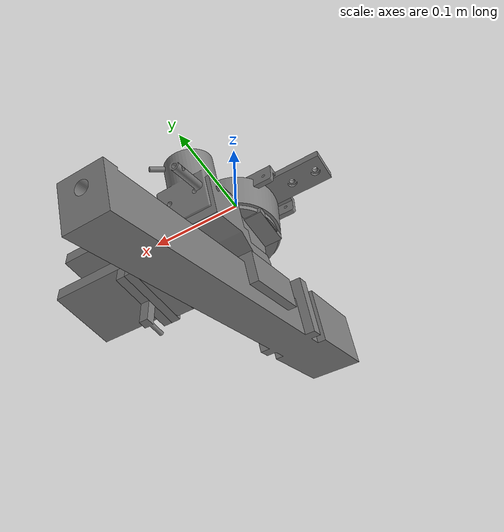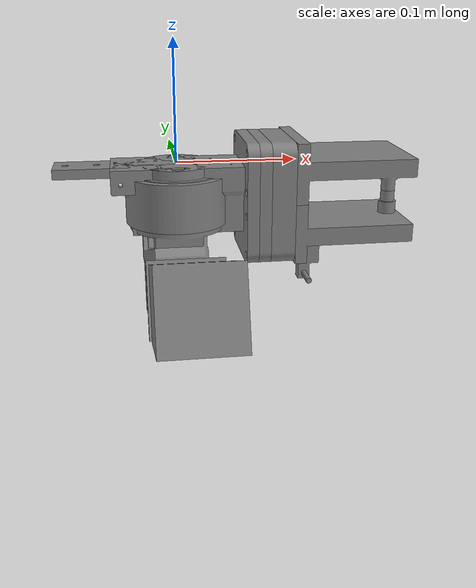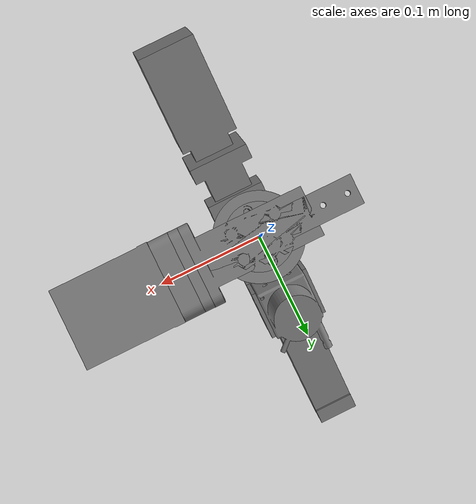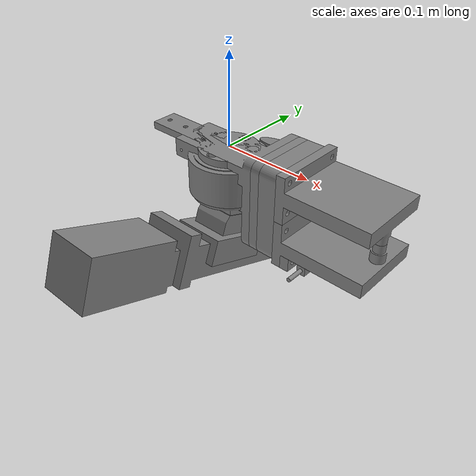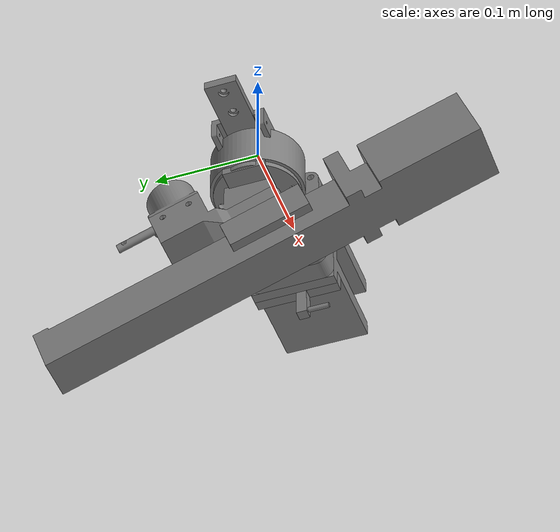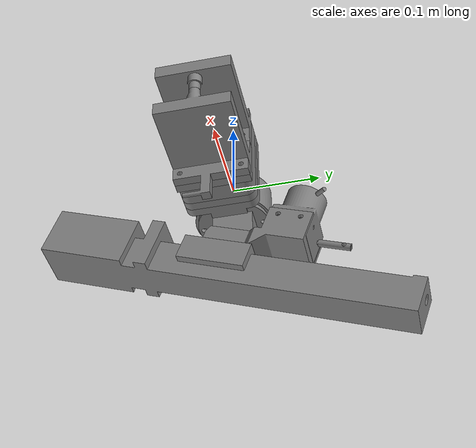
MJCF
<?xml version="1.0" encoding="UTF-8"?>
<mujoco>
<compiler meshdir="assets"/>
  <asset>
    <mesh file="t4__wu_fu_zhu_tui_ban_____bian_shi_tui__1_linear_slide_1_linear_slide_a_1.stl"/>
    <mesh file="t4__wu_fu_zhu_tui_ban_____bian_shi_tui__1_linear_slide_1_linear_slide_b_1.stl"/>
    <mesh file="t4__wu_fu_zhu_tui_ban_____bian_shi_tui__1__liu_wei_li_chuan_gan_qi__1.stl"/>
    <mesh file="t4__wu_fu_zhu_tui_ban_____bian_shi_tui__1__liu_wei_li_chuan_gan_qi___zhi_xian_dian_ji_gu_ding_jian__1.stl"/>
    <mesh file="t4__wu_fu_zhu_tui_ban_____bian_shi_tui__1__liu_wei_li_chuan_gan_qi_ji_shen_gu_ding_jian__1.stl"/>
    <mesh file="t4__wu_fu_zhu_tui_ban_____bian_shi_tui__1__zhi_xian_chuan_gan_qi__1.stl"/>
    <mesh file="t4__wu_fu_zhu_tui_ban_____bian_shi_tui__1__zhi_xian_chuan_gan_qi_an_zhuang_jian__3.stl"/>
    <mesh file="t4__wu_fu_zhu_tui_ban_____bian_shi_tui_hua_kuai__t4__wu_fu_zhu_tui_ban__1_0814_bu_ding_jian__1.stl"/>
    <mesh file="t4__wu_fu_zhu_tui_ban_____bian_shi_tui_hua_kuai__t4__wu_fu_zhu_tui_ban__1__quan_xiang_lun_gu_ding_jian___da_yin___1.stl"/>
    <mesh file="t4__wu_fu_zhu_tui_ban_____bian_shi_tui_hua_kuai__t4__wu_fu_zhu_tui_ban__1__quan_xiang_lun_gu_ding_jian___da_yin____ao__1.stl"/>
    <mesh file="t4__wu_fu_zhu_tui_ban_____bian_shi_tui_hua_kuai__t4__wu_fu_zhu_tui_ban__1__fu_jian___fu_jian___zhuang_pei_ti_1__bian_shi_tui_hua_kuai__t4__wu_fu_zhu_tui_ban__1_10mm_bu_ding_jian__1.stl"/>
    <mesh file="t4__wu_fu_zhu_tui_ban_____bian_shi_tui_hua_kuai__t4__wu_fu_zhu_tui_ban__1__zhi_xian_chuan_gan_qi_gua_gou_gu_ding_jian__1.stl"/>
    <mesh file="t4__wu_fu_zhu_tui_ban_____bian_shi_tui_hua_kuai__t4__wu_fu_zhu_tui_ban__1__zhi_xian_mo_zu_di_bu_lian_jie_jian__0801_1.stl"/>
  </asset>

  <default>
  <default class="辨识腿_default">
  <geom contype="0" conaffinity="0"/>
  </default>
  </default>

  <worldbody>
  <body name="辨识腿_body" pos="0 0 0">
    <geom type="mesh" mesh="t4__wu_fu_zhu_tui_ban_____bian_shi_tui__1_linear_slide_1_linear_slide_a_1" mass="0.0001" class="辨识腿_default"/>
    <geom type="mesh" mesh="t4__wu_fu_zhu_tui_ban_____bian_shi_tui__1_linear_slide_1_linear_slide_b_1" mass="0.0001" class="辨识腿_default"/>
    <geom type="mesh" mesh="t4__wu_fu_zhu_tui_ban_____bian_shi_tui__1__liu_wei_li_chuan_gan_qi__1" mass="0.0001" class="辨识腿_default"/>
    <geom type="mesh" mesh="t4__wu_fu_zhu_tui_ban_____bian_shi_tui__1__liu_wei_li_chuan_gan_qi___zhi_xian_dian_ji_gu_ding_jian__1" mass="0.0001" class="辨识腿_default"/>
    <geom type="mesh" mesh="t4__wu_fu_zhu_tui_ban_____bian_shi_tui__1__liu_wei_li_chuan_gan_qi_ji_shen_gu_ding_jian__1" mass="0.0001" class="辨识腿_default"/>
    <geom type="mesh" mesh="t4__wu_fu_zhu_tui_ban_____bian_shi_tui__1__zhi_xian_chuan_gan_qi__1" mass="0.0001" class="辨识腿_default"/>
    <geom type="mesh" mesh="t4__wu_fu_zhu_tui_ban_____bian_shi_tui__1__zhi_xian_chuan_gan_qi_an_zhuang_jian__3" mass="0.0001" class="辨识腿_default"/>
    <geom type="mesh" mesh="t4__wu_fu_zhu_tui_ban_____bian_shi_tui_hua_kuai__t4__wu_fu_zhu_tui_ban__1_0814_bu_ding_jian__1" mass="0.0001" class="辨识腿_default"/>
    <geom type="mesh" mesh="t4__wu_fu_zhu_tui_ban_____bian_shi_tui_hua_kuai__t4__wu_fu_zhu_tui_ban__1__quan_xiang_lun_gu_ding_jian___da_yin___1" mass="0.0001" class="辨识腿_default"/>
    <geom type="mesh" mesh="t4__wu_fu_zhu_tui_ban_____bian_shi_tui_hua_kuai__t4__wu_fu_zhu_tui_ban__1__quan_xiang_lun_gu_ding_jian___da_yin____ao__1" mass="0.0001" class="辨识腿_default"/>
    <geom type="mesh" mesh="t4__wu_fu_zhu_tui_ban_____bian_shi_tui_hua_kuai__t4__wu_fu_zhu_tui_ban__1__fu_jian___fu_jian___zhuang_pei_ti_1__bian_shi_tui_hua_kuai__t4__wu_fu_zhu_tui_ban__1_10mm_bu_ding_jian__1" mass="0.0001" class="辨识腿_default"/>
    <geom type="mesh" mesh="t4__wu_fu_zhu_tui_ban_____bian_shi_tui_hua_kuai__t4__wu_fu_zhu_tui_ban__1__zhi_xian_chuan_gan_qi_gua_gou_gu_ding_jian__1" mass="0.0001" class="辨识腿_default"/>
    <geom type="mesh" mesh="t4__wu_fu_zhu_tui_ban_____bian_shi_tui_hua_kuai__t4__wu_fu_zhu_tui_ban__1__zhi_xian_mo_zu_di_bu_lian_jie_jian__0801_1" mass="0.0001" class="辨识腿_default"/>
  </body>
  </worldbody>
</mujoco>
